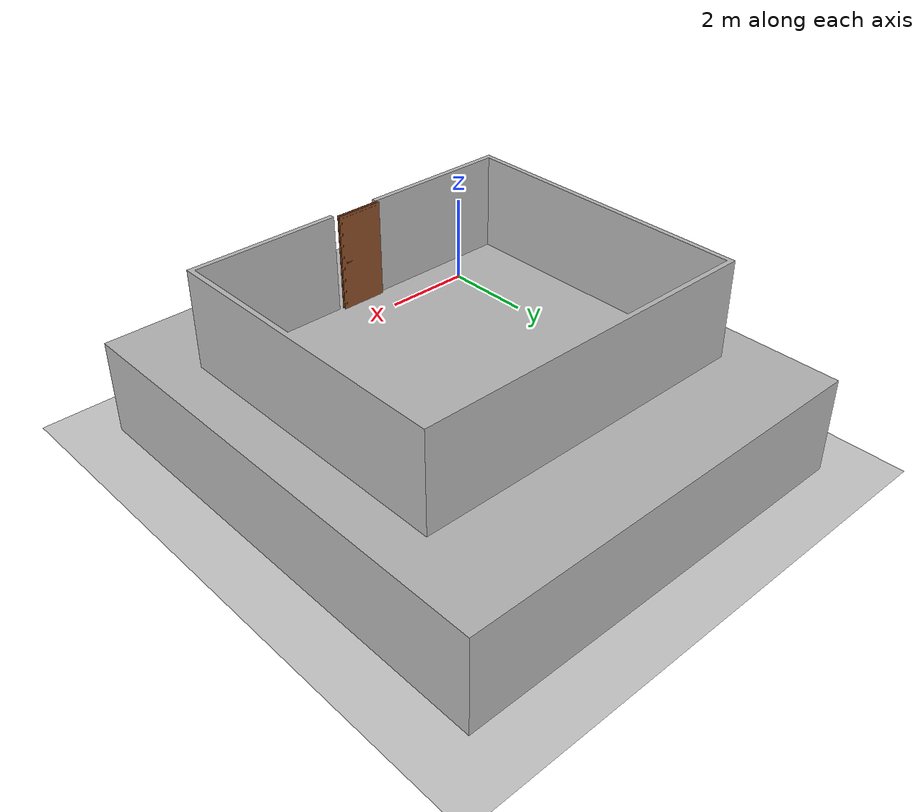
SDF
<?xml version="1.0" ?>
<sdf version="1.6">
    <world name="escenariopruebaAutomatizado">
        <include>
            <uri>model://ground_plane</uri>
        </include>
        <include>
            <uri>model://sun</uri>
        </include>
        <include>
            <uri>model://escenariopruebaAutomatizado</uri>
            <pose>0 0 0 0 0 0</pose>
        </include>
    </world>
</sdf>

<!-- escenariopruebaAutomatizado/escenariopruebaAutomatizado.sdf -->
<sdf version="1.6">
    <model name="escenariopruebaAutomatizado">
        <static>false</static>
        <link name="pared_link">
            <pose>0 0 0 0 0 0</pose>
            <gravity>false</gravity>
            <self_collide>false</self_collide>
            <visual name="pared_visual">
                <geometry>
                    <mesh>
                        <uri>model://escenariopruebaAutomatizado/meshes/walls_slabs.dae</uri>
                    </mesh>
                </geometry>
            </visual>
            <collision name="pared_collision">
                <geometry>
                    <mesh>
                        <uri>model://escenariopruebaAutomatizado/meshes/walls_slabs.dae</uri>
                    </mesh>
                </geometry>
            </collision>
            <inertial>
                <mass>100.0</mass>
                <inertia>
                    <ixx>10.0</ixx>
                    <iyy>10.0</iyy>
                    <izz>10.0</izz>
                    <ixy>0.0</ixy>
                    <ixz>0.0</ixz>
                    <iyz>0.0</iyz>
                </inertia>
            </inertial>
        </link>
        <link name="0S0NG4owH0uBivEhLsmS3F_link">
            <pose>3.99999976158142 2.02034997940063 1.97499990463257 0.0 -0.0 0.0</pose>
            <visual name="0S0NG4owH0uBivEhLsmS3F_visual">
                <geometry>
                    <mesh>
                        <uri>model://escenariopruebaAutomatizado/meshes/0S0NG4owH0uBivEhLsmS3F.dae</uri>
                    </mesh>
                </geometry>
            </visual>
            <collision name="0S0NG4owH0uBivEhLsmS3F_collision">
                <geometry>
                    <mesh>
                        <uri>model://escenariopruebaAutomatizado/meshes/0S0NG4owH0uBivEhLsmS3F.dae</uri>
                    </mesh>
                </geometry>
            </collision>
        </link>
        <joint name="joint_0S0NG4owH0uBivEhLsmS3F" type="revolute">
            <parent>pared_link</parent>
            <child>0S0NG4owH0uBivEhLsmS3F_link</child>
            <pose>0 0 0 0 0 0</pose>
            <axis>
                <xyz>0 0 1</xyz>
                <limit>
                    <lower>-1.57</lower>
                    <upper>1.57</upper>
                    <effort>10</effort>
                    <velocity>1.0</velocity>
                </limit>
                <dynamics>
                    <damping>0.001</damping>
                    <friction>0.05</friction>
                </dynamics>
            </axis>
        </joint>
    </model>
</sdf>
